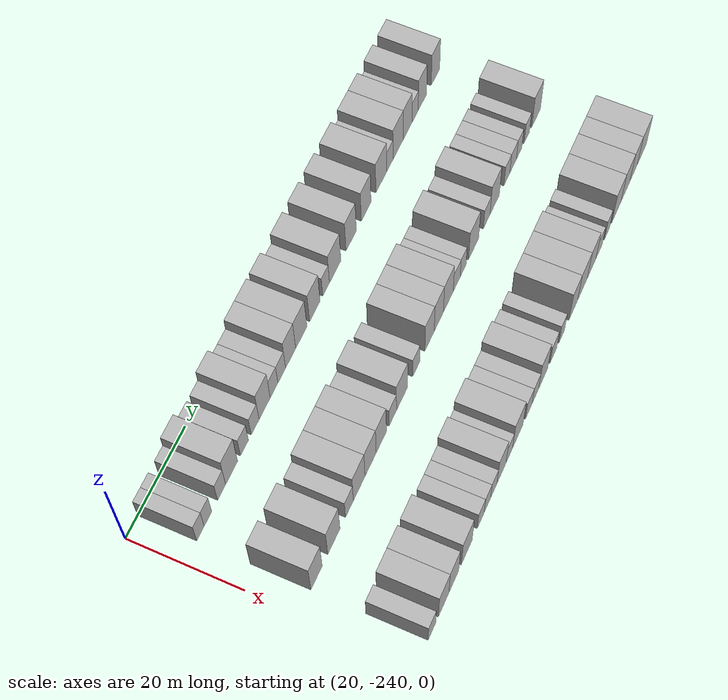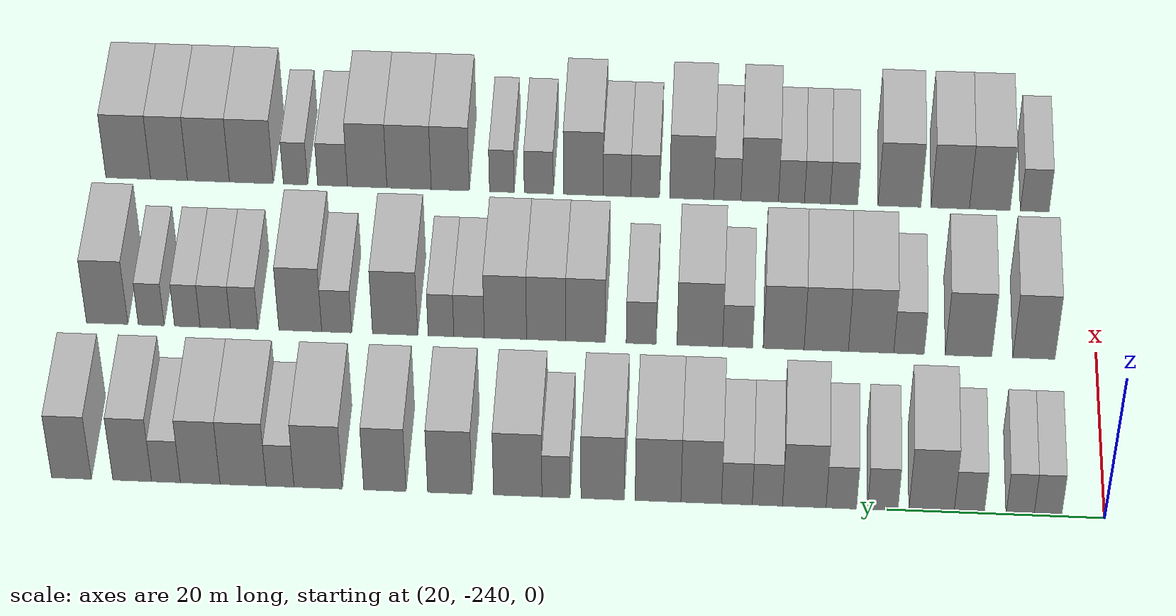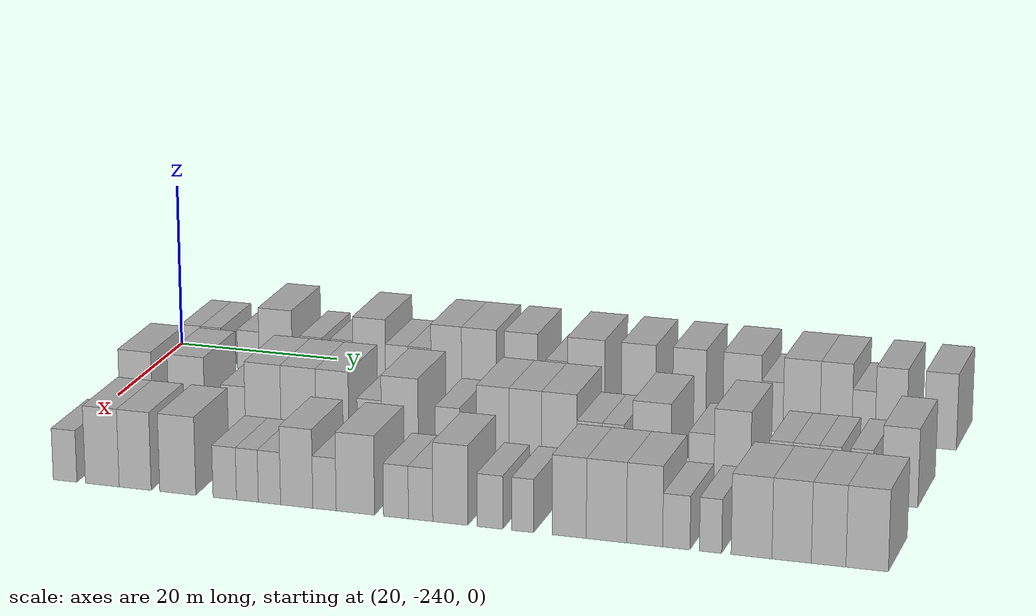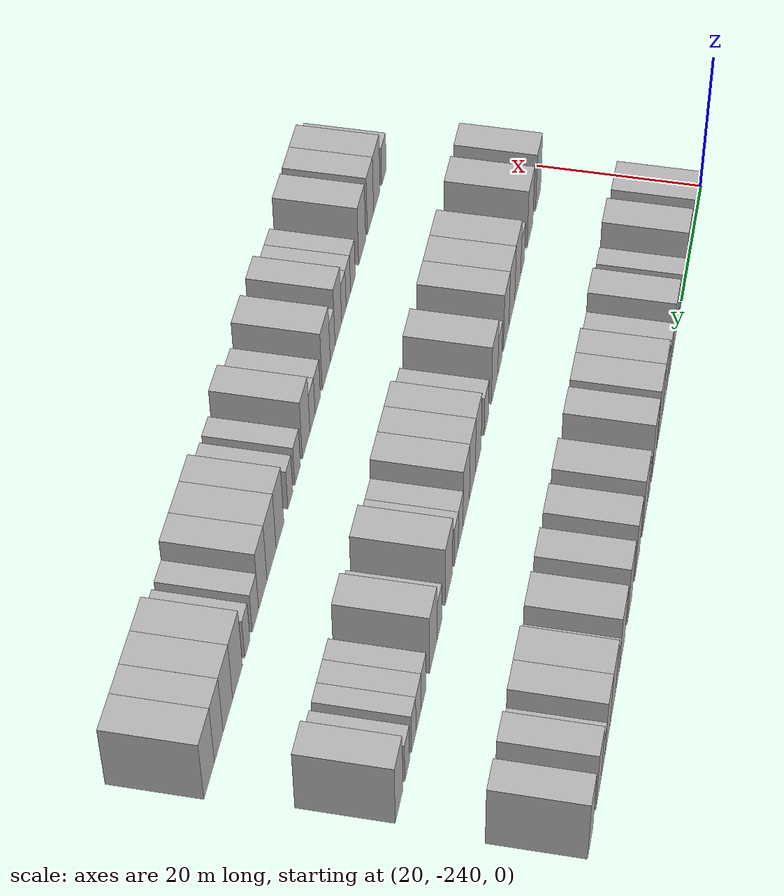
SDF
<sdf version="1.6">
 <world name="default">
  <model name="building_1">
   <static>1</static>
   <pose>25.0000 -234.7384 0 0.000000 0.000000 0.000000</pose>
   <link name="link">
    <pose>0 0 3.00 0 0 0</pose>
    <collision name="collision"><geometry><box><size>10.0000 2.5231 6.0000</size></box></geometry></collision>
    <visual name="visual">
     <cast_shadows>0</cast_shadows>
     <geometry><box><size>10.0000 2.5231 6.0000</size></box></geometry>
     <material>
      <script>
       <uri>model://HANNAS_wall/materials/scripts</uri>
       <uri>model://HANNAS_wall/materials/textures</uri>
       <name>vrc/HANNAS_wall</name>
      </script>
     </material>
    </visual>
   </link>
  </model>
  <model name="building_2">
   <static>1</static>
   <pose>25.0000 -232.1970 0 0.000000 0.000000 0.000000</pose>
   <link name="link">
    <pose>0 0 3.00 0 0 0</pose>
    <collision name="collision"><geometry><box><size>10.0000 2.5597 6.0000</size></box></geometry></collision>
    <visual name="visual">
     <cast_shadows>0</cast_shadows>
     <geometry><box><size>10.0000 2.5597 6.0000</size></box></geometry>
     <material>
      <script>
       <uri>model://HANNAS_wall/materials/scripts</uri>
       <uri>model://HANNAS_wall/materials/textures</uri>
       <name>vrc/HANNAS_wall</name>
      </script>
     </material>
    </visual>
   </link>
  </model>
  <model name="building_3">
   <static>1</static>
   <pose>25.0000 -227.5355 0 0.000000 0.000000 0.000000</pose>
   <link name="link">
    <pose>0 0 3.00 0 0 0</pose>
    <collision name="collision"><geometry><box><size>10.0000 2.7634 6.0000</size></box></geometry></collision>
    <visual name="visual">
     <cast_shadows>0</cast_shadows>
     <geometry><box><size>10.0000 2.7634 6.0000</size></box></geometry>
     <material>
      <script>
       <uri>model://HANNAS_wall/materials/scripts</uri>
       <uri>model://HANNAS_wall/materials/textures</uri>
       <name>vrc/HANNAS_wall</name>
      </script>
     </material>
    </visual>
   </link>
  </model>
  <model name="building_4">
   <static>1</static>
   <pose>25.0000 -224.0733 0 0.000000 0.000000 0.000000</pose>
   <link name="link">
    <pose>0 0 4.50 0 0 0</pose>
    <collision name="collision"><geometry><box><size>10.0000 4.1609 9.0000</size></box></geometry></collision>
    <visual name="visual">
     <cast_shadows>0</cast_shadows>
     <geometry><box><size>10.0000 4.1609 9.0000</size></box></geometry>
     <material>
      <script>
       <uri>model://HANNAS_wall/materials/scripts</uri>
       <uri>model://HANNAS_wall/materials/textures</uri>
       <name>vrc/HANNAS_wall</name>
      </script>
     </material>
    </visual>
   </link>
  </model>
  <model name="building_5">
   <static>1</static>
   <pose>25.0000 -219.5914 0 0.000000 0.000000 0.000000</pose>
   <link name="link">
    <pose>0 0 3.00 0 0 0</pose>
    <collision name="collision"><geometry><box><size>10.0000 2.8029 6.0000</size></box></geometry></collision>
    <visual name="visual">
     <cast_shadows>0</cast_shadows>
     <geometry><box><size>10.0000 2.8029 6.0000</size></box></geometry>
     <material>
      <script>
       <uri>model://HANNAS_wall/materials/scripts</uri>
       <uri>model://HANNAS_wall/materials/textures</uri>
       <name>vrc/HANNAS_wall</name>
      </script>
     </material>
    </visual>
   </link>
  </model>
  <model name="building_6">
   <static>1</static>
   <pose>25.0000 -215.7897 0 0.000000 0.000000 0.000000</pose>
   <link name="link">
    <pose>0 0 3.00 0 0 0</pose>
    <collision name="collision"><geometry><box><size>10.0000 2.8006 6.0000</size></box></geometry></collision>
    <visual name="visual">
     <cast_shadows>0</cast_shadows>
     <geometry><box><size>10.0000 2.8006 6.0000</size></box></geometry>
     <material>
      <script>
       <uri>model://HANNAS_wall/materials/scripts</uri>
       <uri>model://HANNAS_wall/materials/textures</uri>
       <name>vrc/HANNAS_wall</name>
      </script>
     </material>
    </visual>
   </link>
  </model>
  <model name="building_7">
   <static>1</static>
   <pose>25.0000 -212.3828 0 0.000000 0.000000 0.000000</pose>
   <link name="link">
    <pose>0 0 4.50 0 0 0</pose>
    <collision name="collision"><geometry><box><size>10.0000 4.0132 9.0000</size></box></geometry></collision>
    <visual name="visual">
     <cast_shadows>0</cast_shadows>
     <geometry><box><size>10.0000 4.0132 9.0000</size></box></geometry>
     <material>
      <script>
       <uri>model://HANNAS_wall/materials/scripts</uri>
       <uri>model://HANNAS_wall/materials/textures</uri>
       <name>vrc/HANNAS_wall</name>
      </script>
     </material>
    </visual>
   </link>
  </model>
  <model name="building_8">
   <static>1</static>
   <pose>25.0000 -208.9875 0 0.000000 0.000000 0.000000</pose>
   <link name="link">
    <pose>0 0 3.00 0 0 0</pose>
    <collision name="collision"><geometry><box><size>10.0000 2.7774 6.0000</size></box></geometry></collision>
    <visual name="visual">
     <cast_shadows>0</cast_shadows>
     <geometry><box><size>10.0000 2.7774 6.0000</size></box></geometry>
     <material>
      <script>
       <uri>model://HANNAS_wall/materials/scripts</uri>
       <uri>model://HANNAS_wall/materials/textures</uri>
       <name>vrc/HANNAS_wall</name>
      </script>
     </material>
    </visual>
   </link>
  </model>
  <model name="building_9">
   <static>1</static>
   <pose>25.0000 -206.1806 0 0.000000 0.000000 0.000000</pose>
   <link name="link">
    <pose>0 0 3.00 0 0 0</pose>
    <collision name="collision"><geometry><box><size>10.0000 2.8366 6.0000</size></box></geometry></collision>
    <visual name="visual">
     <cast_shadows>0</cast_shadows>
     <geometry><box><size>10.0000 2.8366 6.0000</size></box></geometry>
     <material>
      <script>
       <uri>model://HANNAS_wall/materials/scripts</uri>
       <uri>model://HANNAS_wall/materials/textures</uri>
       <name>vrc/HANNAS_wall</name>
      </script>
     </material>
    </visual>
   </link>
  </model>
  <model name="building_10">
   <static>1</static>
   <pose>25.0000 -202.8915 0 0.000000 0.000000 0.000000</pose>
   <link name="link">
    <pose>0 0 4.50 0 0 0</pose>
    <collision name="collision"><geometry><box><size>10.0000 3.7415 9.0000</size></box></geometry></collision>
    <visual name="visual">
     <cast_shadows>0</cast_shadows>
     <geometry><box><size>10.0000 3.7415 9.0000</size></box></geometry>
     <material>
      <script>
       <uri>model://HANNAS_wall/materials/scripts</uri>
       <uri>model://HANNAS_wall/materials/textures</uri>
       <name>vrc/HANNAS_wall</name>
      </script>
     </material>
    </visual>
   </link>
  </model>
  <model name="building_11">
   <static>1</static>
   <pose>25.0000 -198.9121 0 0.000000 0.000000 0.000000</pose>
   <link name="link">
    <pose>0 0 4.50 0 0 0</pose>
    <collision name="collision"><geometry><box><size>10.0000 4.2174 9.0000</size></box></geometry></collision>
    <visual name="visual">
     <cast_shadows>0</cast_shadows>
     <geometry><box><size>10.0000 4.2174 9.0000</size></box></geometry>
     <material>
      <script>
       <uri>model://HANNAS_wall/materials/scripts</uri>
       <uri>model://HANNAS_wall/materials/textures</uri>
       <name>vrc/HANNAS_wall</name>
      </script>
     </material>
    </visual>
   </link>
  </model>
  <model name="building_12">
   <static>1</static>
   <pose>25.0000 -193.8007 0 0.000000 0.000000 0.000000</pose>
   <link name="link">
    <pose>0 0 4.50 0 0 0</pose>
    <collision name="collision"><geometry><box><size>10.0000 4.0055 9.0000</size></box></geometry></collision>
    <visual name="visual">
     <cast_shadows>0</cast_shadows>
     <geometry><box><size>10.0000 4.0055 9.0000</size></box></geometry>
     <material>
      <script>
       <uri>model://HANNAS_wall/materials/scripts</uri>
       <uri>model://HANNAS_wall/materials/textures</uri>
       <name>vrc/HANNAS_wall</name>
      </script>
     </material>
    </visual>
   </link>
  </model>
  <model name="building_13">
   <static>1</static>
   <pose>25.0000 -189.5023 0 0.000000 0.000000 0.000000</pose>
   <link name="link">
    <pose>0 0 3.00 0 0 0</pose>
    <collision name="collision"><geometry><box><size>10.0000 2.5913 6.0000</size></box></geometry></collision>
    <visual name="visual">
     <cast_shadows>0</cast_shadows>
     <geometry><box><size>10.0000 2.5913 6.0000</size></box></geometry>
     <material>
      <script>
       <uri>model://HANNAS_wall/materials/scripts</uri>
       <uri>model://HANNAS_wall/materials/textures</uri>
       <name>vrc/HANNAS_wall</name>
      </script>
     </material>
    </visual>
   </link>
  </model>
  <model name="building_14">
   <static>1</static>
   <pose>25.0000 -185.9713 0 0.000000 0.000000 0.000000</pose>
   <link name="link">
    <pose>0 0 4.50 0 0 0</pose>
    <collision name="collision"><geometry><box><size>10.0000 4.4707 9.0000</size></box></geometry></collision>
    <visual name="visual">
     <cast_shadows>0</cast_shadows>
     <geometry><box><size>10.0000 4.4707 9.0000</size></box></geometry>
     <material>
      <script>
       <uri>model://HANNAS_wall/materials/scripts</uri>
       <uri>model://HANNAS_wall/materials/textures</uri>
       <name>vrc/HANNAS_wall</name>
      </script>
     </material>
    </visual>
   </link>
  </model>
  <model name="building_15">
   <static>1</static>
   <pose>25.0000 -179.6854 0 0.000000 0.000000 0.000000</pose>
   <link name="link">
    <pose>0 0 4.50 0 0 0</pose>
    <collision name="collision"><geometry><box><size>10.0000 4.1010 9.0000</size></box></geometry></collision>
    <visual name="visual">
     <cast_shadows>0</cast_shadows>
     <geometry><box><size>10.0000 4.1010 9.0000</size></box></geometry>
     <material>
      <script>
       <uri>model://HANNAS_wall/materials/scripts</uri>
       <uri>model://HANNAS_wall/materials/textures</uri>
       <name>vrc/HANNAS_wall</name>
      </script>
     </material>
    </visual>
   </link>
  </model>
  <model name="building_16">
   <static>1</static>
   <pose>25.0000 -173.6761 0 0.000000 0.000000 0.000000</pose>
   <link name="link">
    <pose>0 0 4.50 0 0 0</pose>
    <collision name="collision"><geometry><box><size>10.0000 3.9175 9.0000</size></box></geometry></collision>
    <visual name="visual">
     <cast_shadows>0</cast_shadows>
     <geometry><box><size>10.0000 3.9175 9.0000</size></box></geometry>
     <material>
      <script>
       <uri>model://HANNAS_wall/materials/scripts</uri>
       <uri>model://HANNAS_wall/materials/textures</uri>
       <name>vrc/HANNAS_wall</name>
      </script>
     </material>
    </visual>
   </link>
  </model>
  <model name="building_17">
   <static>1</static>
   <pose>25.0000 -167.4812 0 0.000000 0.000000 0.000000</pose>
   <link name="link">
    <pose>0 0 4.50 0 0 0</pose>
    <collision name="collision"><geometry><box><size>10.0000 4.4723 9.0000</size></box></geometry></collision>
    <visual name="visual">
     <cast_shadows>0</cast_shadows>
     <geometry><box><size>10.0000 4.4723 9.0000</size></box></geometry>
     <material>
      <script>
       <uri>model://HANNAS_wall/materials/scripts</uri>
       <uri>model://HANNAS_wall/materials/textures</uri>
       <name>vrc/HANNAS_wall</name>
      </script>
     </material>
    </visual>
   </link>
  </model>
  <model name="building_18">
   <static>1</static>
   <pose>25.0000 -163.9544 0 0.000000 0.000000 0.000000</pose>
   <link name="link">
    <pose>0 0 3.00 0 0 0</pose>
    <collision name="collision"><geometry><box><size>10.0000 2.5814 6.0000</size></box></geometry></collision>
    <visual name="visual">
     <cast_shadows>0</cast_shadows>
     <geometry><box><size>10.0000 2.5814 6.0000</size></box></geometry>
     <material>
      <script>
       <uri>model://HANNAS_wall/materials/scripts</uri>
       <uri>model://HANNAS_wall/materials/textures</uri>
       <name>vrc/HANNAS_wall</name>
      </script>
     </material>
    </visual>
   </link>
  </model>
  <model name="building_19">
   <static>1</static>
   <pose>25.0000 -160.5230 0 0.000000 0.000000 0.000000</pose>
   <link name="link">
    <pose>0 0 4.50 0 0 0</pose>
    <collision name="collision"><geometry><box><size>10.0000 4.2813 9.0000</size></box></geometry></collision>
    <visual name="visual">
     <cast_shadows>0</cast_shadows>
     <geometry><box><size>10.0000 4.2813 9.0000</size></box></geometry>
     <material>
      <script>
       <uri>model://HANNAS_wall/materials/scripts</uri>
       <uri>model://HANNAS_wall/materials/textures</uri>
       <name>vrc/HANNAS_wall</name>
      </script>
     </material>
    </visual>
   </link>
  </model>
  <model name="building_20">
   <static>1</static>
   <pose>25.0000 -156.5342 0 0.000000 0.000000 0.000000</pose>
   <link name="link">
    <pose>0 0 4.50 0 0 0</pose>
    <collision name="collision"><geometry><box><size>10.0000 3.6963 9.0000</size></box></geometry></collision>
    <visual name="visual">
     <cast_shadows>0</cast_shadows>
     <geometry><box><size>10.0000 3.6963 9.0000</size></box></geometry>
     <material>
      <script>
       <uri>model://HANNAS_wall/materials/scripts</uri>
       <uri>model://HANNAS_wall/materials/textures</uri>
       <name>vrc/HANNAS_wall</name>
      </script>
     </material>
    </visual>
   </link>
  </model>
  <model name="building_21">
   <static>1</static>
   <pose>25.0000 -153.3508 0 0.000000 0.000000 0.000000</pose>
   <link name="link">
    <pose>0 0 3.00 0 0 0</pose>
    <collision name="collision"><geometry><box><size>10.0000 2.6704 6.0000</size></box></geometry></collision>
    <visual name="visual">
     <cast_shadows>0</cast_shadows>
     <geometry><box><size>10.0000 2.6704 6.0000</size></box></geometry>
     <material>
      <script>
       <uri>model://HANNAS_wall/materials/scripts</uri>
       <uri>model://HANNAS_wall/materials/textures</uri>
       <name>vrc/HANNAS_wall</name>
      </script>
     </material>
    </visual>
   </link>
  </model>
  <model name="building_22">
   <static>1</static>
   <pose>25.0000 -150.2124 0 0.000000 0.000000 0.000000</pose>
   <link name="link">
    <pose>0 0 4.50 0 0 0</pose>
    <collision name="collision"><geometry><box><size>10.0000 3.6064 9.0000</size></box></geometry></collision>
    <visual name="visual">
     <cast_shadows>0</cast_shadows>
     <geometry><box><size>10.0000 3.6064 9.0000</size></box></geometry>
     <material>
      <script>
       <uri>model://HANNAS_wall/materials/scripts</uri>
       <uri>model://HANNAS_wall/materials/textures</uri>
       <name>vrc/HANNAS_wall</name>
      </script>
     </material>
    </visual>
   </link>
  </model>
  <model name="building_23">
   <static>1</static>
   <pose>25.0000 -144.5589 0 0.000000 0.000000 0.000000</pose>
   <link name="link">
    <pose>0 0 4.50 0 0 0</pose>
    <collision name="collision"><geometry><box><size>10.0000 3.7007 9.0000</size></box></geometry></collision>
    <visual name="visual">
     <cast_shadows>0</cast_shadows>
     <geometry><box><size>10.0000 3.7007 9.0000</size></box></geometry>
     <material>
      <script>
       <uri>model://HANNAS_wall/materials/scripts</uri>
       <uri>model://HANNAS_wall/materials/textures</uri>
       <name>vrc/HANNAS_wall</name>
      </script>
     </material>
    </visual>
   </link>
  </model>
  <model name="building_120">
   <static>1</static>
   <pose>44.0000 -233.9958 0 0.000000 0.000000 0.000000</pose>
   <link name="link">
    <pose>0 0 4.50 0 0 0</pose>
    <collision name="collision"><geometry><box><size>10.0000 4.0084 9.0000</size></box></geometry></collision>
    <visual name="visual">
     <cast_shadows>0</cast_shadows>
     <geometry><box><size>10.0000 4.0084 9.0000</size></box></geometry>
     <material>
      <script>
       <uri>model://HANNAS_wall/materials/scripts</uri>
       <uri>model://HANNAS_wall/materials/textures</uri>
       <name>vrc/HANNAS_wall</name>
      </script>
     </material>
    </visual>
   </link>
  </model>
  <model name="building_121">
   <static>1</static>
   <pose>44.0000 -227.7845 0 0.000000 0.000000 0.000000</pose>
   <link name="link">
    <pose>0 0 4.50 0 0 0</pose>
    <collision name="collision"><geometry><box><size>10.0000 4.4141 9.0000</size></box></geometry></collision>
    <visual name="visual">
     <cast_shadows>0</cast_shadows>
     <geometry><box><size>10.0000 4.4141 9.0000</size></box></geometry>
     <material>
      <script>
       <uri>model://HANNAS_wall/materials/scripts</uri>
       <uri>model://HANNAS_wall/materials/textures</uri>
       <name>vrc/HANNAS_wall</name>
      </script>
     </material>
    </visual>
   </link>
  </model>
  <model name="building_122">
   <static>1</static>
   <pose>44.0000 -222.1283 0 0.000000 0.000000 0.000000</pose>
   <link name="link">
    <pose>0 0 3.00 0 0 0</pose>
    <collision name="collision"><geometry><box><size>10.0000 2.8984 6.0000</size></box></geometry></collision>
    <visual name="visual">
     <cast_shadows>0</cast_shadows>
     <geometry><box><size>10.0000 2.8984 6.0000</size></box></geometry>
     <material>
      <script>
       <uri>model://HANNAS_wall/materials/scripts</uri>
       <uri>model://HANNAS_wall/materials/textures</uri>
       <name>vrc/HANNAS_wall</name>
      </script>
     </material>
    </visual>
   </link>
  </model>
  <model name="building_123">
   <static>1</static>
   <pose>44.0000 -218.5198 0 0.000000 0.000000 0.000000</pose>
   <link name="link">
    <pose>0 0 4.50 0 0 0</pose>
    <collision name="collision"><geometry><box><size>10.0000 4.3186 9.0000</size></box></geometry></collision>
    <visual name="visual">
     <cast_shadows>0</cast_shadows>
     <geometry><box><size>10.0000 4.3186 9.0000</size></box></geometry>
     <material>
      <script>
       <uri>model://HANNAS_wall/materials/scripts</uri>
       <uri>model://HANNAS_wall/materials/textures</uri>
       <name>vrc/HANNAS_wall</name>
      </script>
     </material>
    </visual>
   </link>
  </model>
  <model name="building_124">
   <static>1</static>
   <pose>44.0000 -214.2563 0 0.000000 0.000000 0.000000</pose>
   <link name="link">
    <pose>0 0 4.50 0 0 0</pose>
    <collision name="collision"><geometry><box><size>10.0000 4.2084 9.0000</size></box></geometry></collision>
    <visual name="visual">
     <cast_shadows>0</cast_shadows>
     <geometry><box><size>10.0000 4.2084 9.0000</size></box></geometry>
     <material>
      <script>
       <uri>model://HANNAS_wall/materials/scripts</uri>
       <uri>model://HANNAS_wall/materials/textures</uri>
       <name>vrc/HANNAS_wall</name>
      </script>
     </material>
    </visual>
   </link>
  </model>
  <model name="building_125">
   <static>1</static>
   <pose>44.0000 -210.2001 0 0.000000 0.000000 0.000000</pose>
   <link name="link">
    <pose>0 0 4.50 0 0 0</pose>
    <collision name="collision"><geometry><box><size>10.0000 3.9039 9.0000</size></box></geometry></collision>
    <visual name="visual">
     <cast_shadows>0</cast_shadows>
     <geometry><box><size>10.0000 3.9039 9.0000</size></box></geometry>
     <material>
      <script>
       <uri>model://HANNAS_wall/materials/scripts</uri>
       <uri>model://HANNAS_wall/materials/textures</uri>
       <name>vrc/HANNAS_wall</name>
      </script>
     </material>
    </visual>
   </link>
  </model>
  <model name="building_126">
   <static>1</static>
   <pose>44.0000 -205.8171 0 0.000000 0.000000 0.000000</pose>
   <link name="link">
    <pose>0 0 3.00 0 0 0</pose>
    <collision name="collision"><geometry><box><size>10.0000 2.8621 6.0000</size></box></geometry></collision>
    <visual name="visual">
     <cast_shadows>0</cast_shadows>
     <geometry><box><size>10.0000 2.8621 6.0000</size></box></geometry>
     <material>
      <script>
       <uri>model://HANNAS_wall/materials/scripts</uri>
       <uri>model://HANNAS_wall/materials/textures</uri>
       <name>vrc/HANNAS_wall</name>
      </script>
     </material>
    </visual>
   </link>
  </model>
  <model name="building_127">
   <static>1</static>
   <pose>44.0000 -202.2098 0 0.000000 0.000000 0.000000</pose>
   <link name="link">
    <pose>0 0 4.50 0 0 0</pose>
    <collision name="collision"><geometry><box><size>10.0000 4.3526 9.0000</size></box></geometry></collision>
    <visual name="visual">
     <cast_shadows>0</cast_shadows>
     <geometry><box><size>10.0000 4.3526 9.0000</size></box></geometry>
     <material>
      <script>
       <uri>model://HANNAS_wall/materials/scripts</uri>
       <uri>model://HANNAS_wall/materials/textures</uri>
       <name>vrc/HANNAS_wall</name>
      </script>
     </material>
    </visual>
   </link>
  </model>
  <model name="building_128">
   <static>1</static>
   <pose>44.0000 -196.6104 0 0.000000 0.000000 0.000000</pose>
   <link name="link">
    <pose>0 0 3.00 0 0 0</pose>
    <collision name="collision"><geometry><box><size>10.0000 2.8463 6.0000</size></box></geometry></collision>
    <visual name="visual">
     <cast_shadows>0</cast_shadows>
     <geometry><box><size>10.0000 2.8463 6.0000</size></box></geometry>
     <material>
      <script>
       <uri>model://HANNAS_wall/materials/scripts</uri>
       <uri>model://HANNAS_wall/materials/textures</uri>
       <name>vrc/HANNAS_wall</name>
      </script>
     </material>
    </visual>
   </link>
  </model>
  <model name="building_129">
   <static>1</static>
   <pose>44.0000 -191.3060 0 0.000000 0.000000 0.000000</pose>
   <link name="link">
    <pose>0 0 4.50 0 0 0</pose>
    <collision name="collision"><geometry><box><size>10.0000 3.7624 9.0000</size></box></geometry></collision>
    <visual name="visual">
     <cast_shadows>0</cast_shadows>
     <geometry><box><size>10.0000 3.7624 9.0000</size></box></geometry>
     <material>
      <script>
       <uri>model://HANNAS_wall/materials/scripts</uri>
       <uri>model://HANNAS_wall/materials/textures</uri>
       <name>vrc/HANNAS_wall</name>
      </script>
     </material>
    </visual>
   </link>
  </model>
  <model name="building_130">
   <static>1</static>
   <pose>44.0000 -187.5455 0 0.000000 0.000000 0.000000</pose>
   <link name="link">
    <pose>0 0 4.50 0 0 0</pose>
    <collision name="collision"><geometry><box><size>10.0000 3.7586 9.0000</size></box></geometry></collision>
    <visual name="visual">
     <cast_shadows>0</cast_shadows>
     <geometry><box><size>10.0000 3.7586 9.0000</size></box></geometry>
     <material>
      <script>
       <uri>model://HANNAS_wall/materials/scripts</uri>
       <uri>model://HANNAS_wall/materials/textures</uri>
       <name>vrc/HANNAS_wall</name>
      </script>
     </material>
    </visual>
   </link>
  </model>
  <model name="building_131">
   <static>1</static>
   <pose>44.0000 -183.6457 0 0.000000 0.000000 0.000000</pose>
   <link name="link">
    <pose>0 0 4.50 0 0 0</pose>
    <collision name="collision"><geometry><box><size>10.0000 4.0411 9.0000</size></box></geometry></collision>
    <visual name="visual">
     <cast_shadows>0</cast_shadows>
     <geometry><box><size>10.0000 4.0411 9.0000</size></box></geometry>
     <material>
      <script>
       <uri>model://HANNAS_wall/materials/scripts</uri>
       <uri>model://HANNAS_wall/materials/textures</uri>
       <name>vrc/HANNAS_wall</name>
      </script>
     </material>
    </visual>
   </link>
  </model>
  <model name="building_132">
   <static>1</static>
   <pose>44.0000 -180.1648 0 0.000000 0.000000 0.000000</pose>
   <link name="link">
    <pose>0 0 3.00 0 0 0</pose>
    <collision name="collision"><geometry><box><size>10.0000 2.9207 6.0000</size></box></geometry></collision>
    <visual name="visual">
     <cast_shadows>0</cast_shadows>
     <geometry><box><size>10.0000 2.9207 6.0000</size></box></geometry>
     <material>
      <script>
       <uri>model://HANNAS_wall/materials/scripts</uri>
       <uri>model://HANNAS_wall/materials/textures</uri>
       <name>vrc/HANNAS_wall</name>
      </script>
     </material>
    </visual>
   </link>
  </model>
  <model name="building_133">
   <static>1</static>
   <pose>44.0000 -177.4719 0 0.000000 0.000000 0.000000</pose>
   <link name="link">
    <pose>0 0 3.00 0 0 0</pose>
    <collision name="collision"><geometry><box><size>10.0000 2.4650 6.0000</size></box></geometry></collision>
    <visual name="visual">
     <cast_shadows>0</cast_shadows>
     <geometry><box><size>10.0000 2.4650 6.0000</size></box></geometry>
     <material>
      <script>
       <uri>model://HANNAS_wall/materials/scripts</uri>
       <uri>model://HANNAS_wall/materials/textures</uri>
       <name>vrc/HANNAS_wall</name>
      </script>
     </material>
    </visual>
   </link>
  </model>
  <model name="building_134">
   <static>1</static>
   <pose>44.0000 -173.0725 0 0.000000 0.000000 0.000000</pose>
   <link name="link">
    <pose>0 0 4.50 0 0 0</pose>
    <collision name="collision"><geometry><box><size>10.0000 4.3337 9.0000</size></box></geometry></collision>
    <visual name="visual">
     <cast_shadows>0</cast_shadows>
     <geometry><box><size>10.0000 4.3337 9.0000</size></box></geometry>
     <material>
      <script>
       <uri>model://HANNAS_wall/materials/scripts</uri>
       <uri>model://HANNAS_wall/materials/textures</uri>
       <name>vrc/HANNAS_wall</name>
      </script>
     </material>
    </visual>
   </link>
  </model>
  <model name="building_135">
   <static>1</static>
   <pose>44.0000 -167.4686 0 0.000000 0.000000 0.000000</pose>
   <link name="link">
    <pose>0 0 3.00 0 0 0</pose>
    <collision name="collision"><geometry><box><size>10.0000 2.8742 6.0000</size></box></geometry></collision>
    <visual name="visual">
     <cast_shadows>0</cast_shadows>
     <geometry><box><size>10.0000 2.8742 6.0000</size></box></geometry>
     <material>
      <script>
       <uri>model://HANNAS_wall/materials/scripts</uri>
       <uri>model://HANNAS_wall/materials/textures</uri>
       <name>vrc/HANNAS_wall</name>
      </script>
     </material>
    </visual>
   </link>
  </model>
  <model name="building_136">
   <static>1</static>
   <pose>44.0000 -163.9742 0 0.000000 0.000000 0.000000</pose>
   <link name="link">
    <pose>0 0 4.50 0 0 0</pose>
    <collision name="collision"><geometry><box><size>10.0000 4.1145 9.0000</size></box></geometry></collision>
    <visual name="visual">
     <cast_shadows>0</cast_shadows>
     <geometry><box><size>10.0000 4.1145 9.0000</size></box></geometry>
     <material>
      <script>
       <uri>model://HANNAS_wall/materials/scripts</uri>
       <uri>model://HANNAS_wall/materials/textures</uri>
       <name>vrc/HANNAS_wall</name>
      </script>
     </material>
    </visual>
   </link>
  </model>
  <model name="building_137">
   <static>1</static>
   <pose>44.0000 -158.5891 0 0.000000 0.000000 0.000000</pose>
   <link name="link">
    <pose>0 0 3.00 0 0 0</pose>
    <collision name="collision"><geometry><box><size>10.0000 2.6557 6.0000</size></box></geometry></collision>
    <visual name="visual">
     <cast_shadows>0</cast_shadows>
     <geometry><box><size>10.0000 2.6557 6.0000</size></box></geometry>
     <material>
      <script>
       <uri>model://HANNAS_wall/materials/scripts</uri>
       <uri>model://HANNAS_wall/materials/textures</uri>
       <name>vrc/HANNAS_wall</name>
      </script>
     </material>
    </visual>
   </link>
  </model>
  <model name="building_138">
   <static>1</static>
   <pose>44.0000 -155.7991 0 0.000000 0.000000 0.000000</pose>
   <link name="link">
    <pose>0 0 3.00 0 0 0</pose>
    <collision name="collision"><geometry><box><size>10.0000 2.9244 6.0000</size></box></geometry></collision>
    <visual name="visual">
     <cast_shadows>0</cast_shadows>
     <geometry><box><size>10.0000 2.9244 6.0000</size></box></geometry>
     <material>
      <script>
       <uri>model://HANNAS_wall/materials/scripts</uri>
       <uri>model://HANNAS_wall/materials/textures</uri>
       <name>vrc/HANNAS_wall</name>
      </script>
     </material>
    </visual>
   </link>
  </model>
  <model name="building_139">
   <static>1</static>
   <pose>44.0000 -153.1100 0 0.000000 0.000000 0.000000</pose>
   <link name="link">
    <pose>0 0 3.00 0 0 0</pose>
    <collision name="collision"><geometry><box><size>10.0000 2.4538 6.0000</size></box></geometry></collision>
    <visual name="visual">
     <cast_shadows>0</cast_shadows>
     <geometry><box><size>10.0000 2.4538 6.0000</size></box></geometry>
     <material>
      <script>
       <uri>model://HANNAS_wall/materials/scripts</uri>
       <uri>model://HANNAS_wall/materials/textures</uri>
       <name>vrc/HANNAS_wall</name>
      </script>
     </material>
    </visual>
   </link>
  </model>
  <model name="building_140">
   <static>1</static>
   <pose>44.0000 -149.6361 0 0.000000 0.000000 0.000000</pose>
   <link name="link">
    <pose>0 0 3.00 0 0 0</pose>
    <collision name="collision"><geometry><box><size>10.0000 2.4939 6.0000</size></box></geometry></collision>
    <visual name="visual">
     <cast_shadows>0</cast_shadows>
     <geometry><box><size>10.0000 2.4939 6.0000</size></box></geometry>
     <material>
      <script>
       <uri>model://HANNAS_wall/materials/scripts</uri>
       <uri>model://HANNAS_wall/materials/textures</uri>
       <name>vrc/HANNAS_wall</name>
      </script>
     </material>
    </visual>
   </link>
  </model>
  <model name="building_141">
   <static>1</static>
   <pose>44.0000 -145.3982 0 0.000000 0.000000 0.000000</pose>
   <link name="link">
    <pose>0 0 4.50 0 0 0</pose>
    <collision name="collision"><geometry><box><size>10.0000 3.9820 9.0000</size></box></geometry></collision>
    <visual name="visual">
     <cast_shadows>0</cast_shadows>
     <geometry><box><size>10.0000 3.9820 9.0000</size></box></geometry>
     <material>
      <script>
       <uri>model://HANNAS_wall/materials/scripts</uri>
       <uri>model://HANNAS_wall/materials/textures</uri>
       <name>vrc/HANNAS_wall</name>
      </script>
     </material>
    </visual>
   </link>
  </model>
  <model name="building_230">
   <static>1</static>
   <pose>63.0000 -234.5923 0 0.000000 0.000000 0.000000</pose>
   <link name="link">
    <pose>0 0 3.00 0 0 0</pose>
    <collision name="collision"><geometry><box><size>10.0000 2.8155 6.0000</size></box></geometry></collision>
    <visual name="visual">
     <cast_shadows>0</cast_shadows>
     <geometry><box><size>10.0000 2.8155 6.0000</size></box></geometry>
     <material>
      <script>
       <uri>model://HANNAS_wall/materials/scripts</uri>
       <uri>model://HANNAS_wall/materials/textures</uri>
       <name>vrc/HANNAS_wall</name>
      </script>
     </material>
    </visual>
   </link>
  </model>
  <model name="building_231">
   <static>1</static>
   <pose>63.0000 -230.1860 0 0.000000 0.000000 0.000000</pose>
   <link name="link">
    <pose>0 0 4.50 0 0 0</pose>
    <collision name="collision"><geometry><box><size>10.0000 3.9971 9.0000</size></box></geometry></collision>
    <visual name="visual">
     <cast_shadows>0</cast_shadows>
     <geometry><box><size>10.0000 3.9971 9.0000</size></box></geometry>
     <material>
      <script>
       <uri>model://HANNAS_wall/materials/scripts</uri>
       <uri>model://HANNAS_wall/materials/textures</uri>
       <name>vrc/HANNAS_wall</name>
      </script>
     </material>
    </visual>
   </link>
  </model>
  <model name="building_232">
   <static>1</static>
   <pose>63.0000 -226.3024 0 0.000000 0.000000 0.000000</pose>
   <link name="link">
    <pose>0 0 4.50 0 0 0</pose>
    <collision name="collision"><geometry><box><size>10.0000 3.7701 9.0000</size></box></geometry></collision>
    <visual name="visual">
     <cast_shadows>0</cast_shadows>
     <geometry><box><size>10.0000 3.7701 9.0000</size></box></geometry>
     <material>
      <script>
       <uri>model://HANNAS_wall/materials/scripts</uri>
       <uri>model://HANNAS_wall/materials/textures</uri>
       <name>vrc/HANNAS_wall</name>
      </script>
     </material>
    </visual>
   </link>
  </model>
  <model name="building_233">
   <static>1</static>
   <pose>63.0000 -221.3089 0 0.000000 0.000000 0.000000</pose>
   <link name="link">
    <pose>0 0 4.50 0 0 0</pose>
    <collision name="collision"><geometry><box><size>10.0000 4.2169 9.0000</size></box></geometry></collision>
    <visual name="visual">
     <cast_shadows>0</cast_shadows>
     <geometry><box><size>10.0000 4.2169 9.0000</size></box></geometry>
     <material>
      <script>
       <uri>model://HANNAS_wall/materials/scripts</uri>
       <uri>model://HANNAS_wall/materials/textures</uri>
       <name>vrc/HANNAS_wall</name>
      </script>
     </material>
    </visual>
   </link>
  </model>
  <model name="building_234">
   <static>1</static>
   <pose>63.0000 -215.8413 0 0.000000 0.000000 0.000000</pose>
   <link name="link">
    <pose>0 0 3.00 0 0 0</pose>
    <collision name="collision"><geometry><box><size>10.0000 2.7183 6.0000</size></box></geometry></collision>
    <visual name="visual">
     <cast_shadows>0</cast_shadows>
     <geometry><box><size>10.0000 2.7183 6.0000</size></box></geometry>
     <material>
      <script>
       <uri>model://HANNAS_wall/materials/scripts</uri>
       <uri>model://HANNAS_wall/materials/textures</uri>
       <name>vrc/HANNAS_wall</name>
      </script>
     </material>
    </visual>
   </link>
  </model>
  <model name="building_235">
   <static>1</static>
   <pose>63.0000 -213.2215 0 0.000000 0.000000 0.000000</pose>
   <link name="link">
    <pose>0 0 3.00 0 0 0</pose>
    <collision name="collision"><geometry><box><size>10.0000 2.5212 6.0000</size></box></geometry></collision>
    <visual name="visual">
     <cast_shadows>0</cast_shadows>
     <geometry><box><size>10.0000 2.5212 6.0000</size></box></geometry>
     <material>
      <script>
       <uri>model://HANNAS_wall/materials/scripts</uri>
       <uri>model://HANNAS_wall/materials/textures</uri>
       <name>vrc/HANNAS_wall</name>
      </script>
     </material>
    </visual>
   </link>
  </model>
  <model name="building_236">
   <static>1</static>
   <pose>63.0000 -210.6801 0 0.000000 0.000000 0.000000</pose>
   <link name="link">
    <pose>0 0 3.00 0 0 0</pose>
    <collision name="collision"><geometry><box><size>10.0000 2.5617 6.0000</size></box></geometry></collision>
    <visual name="visual">
     <cast_shadows>0</cast_shadows>
     <geometry><box><size>10.0000 2.5617 6.0000</size></box></geometry>
     <material>
      <script>
       <uri>model://HANNAS_wall/materials/scripts</uri>
       <uri>model://HANNAS_wall/materials/textures</uri>
       <name>vrc/HANNAS_wall</name>
      </script>
     </material>
    </visual>
   </link>
  </model>
  <model name="building_237">
   <static>1</static>
   <pose>63.0000 -207.5498 0 0.000000 0.000000 0.000000</pose>
   <link name="link">
    <pose>0 0 4.50 0 0 0</pose>
    <collision name="collision"><geometry><box><size>10.0000 3.6989 9.0000</size></box></geometry></collision>
    <visual name="visual">
     <cast_shadows>0</cast_shadows>
     <geometry><box><size>10.0000 3.6989 9.0000</size></box></geometry>
     <material>
      <script>
       <uri>model://HANNAS_wall/materials/scripts</uri>
       <uri>model://HANNAS_wall/materials/textures</uri>
       <name>vrc/HANNAS_wall</name>
      </script>
     </material>
    </visual>
   </link>
  </model>
  <model name="building_238">
   <static>1</static>
   <pose>63.0000 -204.3689 0 0.000000 0.000000 0.000000</pose>
   <link name="link">
    <pose>0 0 3.00 0 0 0</pose>
    <collision name="collision"><geometry><box><size>10.0000 2.6629 6.0000</size></box></geometry></collision>
    <visual name="visual">
     <cast_shadows>0</cast_shadows>
     <geometry><box><size>10.0000 2.6629 6.0000</size></box></geometry>
     <material>
      <script>
       <uri>model://HANNAS_wall/materials/scripts</uri>
       <uri>model://HANNAS_wall/materials/textures</uri>
       <name>vrc/HANNAS_wall</name>
      </script>
     </material>
    </visual>
   </link>
  </model>
  <model name="building_239">
   <static>1</static>
   <pose>63.0000 -200.8560 0 0.000000 0.000000 0.000000</pose>
   <link name="link">
    <pose>0 0 4.50 0 0 0</pose>
    <collision name="collision"><geometry><box><size>10.0000 4.3628 9.0000</size></box></geometry></collision>
    <visual name="visual">
     <cast_shadows>0</cast_shadows>
     <geometry><box><size>10.0000 4.3628 9.0000</size></box></geometry>
     <material>
      <script>
       <uri>model://HANNAS_wall/materials/scripts</uri>
       <uri>model://HANNAS_wall/materials/textures</uri>
       <name>vrc/HANNAS_wall</name>
      </script>
     </material>
    </visual>
   </link>
  </model>
  <model name="building_240">
   <static>1</static>
   <pose>63.0000 -196.2683 0 0.000000 0.000000 0.000000</pose>
   <link name="link">
    <pose>0 0 3.00 0 0 0</pose>
    <collision name="collision"><geometry><box><size>10.0000 2.8126 6.0000</size></box></geometry></collision>
    <visual name="visual">
     <cast_shadows>0</cast_shadows>
     <geometry><box><size>10.0000 2.8126 6.0000</size></box></geometry>
     <material>
      <script>
       <uri>model://HANNAS_wall/materials/scripts</uri>
       <uri>model://HANNAS_wall/materials/textures</uri>
       <name>vrc/HANNAS_wall</name>
      </script>
     </material>
    </visual>
   </link>
  </model>
  <model name="building_241">
   <static>1</static>
   <pose>63.0000 -193.4927 0 0.000000 0.000000 0.000000</pose>
   <link name="link">
    <pose>0 0 3.00 0 0 0</pose>
    <collision name="collision"><geometry><box><size>10.0000 2.7386 6.0000</size></box></geometry></collision>
    <visual name="visual">
     <cast_shadows>0</cast_shadows>
     <geometry><box><size>10.0000 2.7386 6.0000</size></box></geometry>
     <material>
      <script>
       <uri>model://HANNAS_wall/materials/scripts</uri>
       <uri>model://HANNAS_wall/materials/textures</uri>
       <name>vrc/HANNAS_wall</name>
      </script>
     </material>
    </visual>
   </link>
  </model>
  <model name="building_242">
   <static>1</static>
   <pose>63.0000 -190.1564 0 0.000000 0.000000 0.000000</pose>
   <link name="link">
    <pose>0 0 4.50 0 0 0</pose>
    <collision name="collision"><geometry><box><size>10.0000 3.9339 9.0000</size></box></geometry></collision>
    <visual name="visual">
     <cast_shadows>0</cast_shadows>
     <geometry><box><size>10.0000 3.9339 9.0000</size></box></geometry>
     <material>
      <script>
       <uri>model://HANNAS_wall/materials/scripts</uri>
       <uri>model://HANNAS_wall/materials/textures</uri>
       <name>vrc/HANNAS_wall</name>
      </script>
     </material>
    </visual>
   </link>
  </model>
  <model name="building_243">
   <static>1</static>
   <pose>63.0000 -185.7538 0 0.000000 0.000000 0.000000</pose>
   <link name="link">
    <pose>0 0 3.00 0 0 0</pose>
    <collision name="collision"><geometry><box><size>10.0000 2.8715 6.0000</size></box></geometry></collision>
    <visual name="visual">
     <cast_shadows>0</cast_shadows>
     <geometry><box><size>10.0000 2.8715 6.0000</size></box></geometry>
     <material>
      <script>
       <uri>model://HANNAS_wall/materials/scripts</uri>
       <uri>model://HANNAS_wall/materials/textures</uri>
       <name>vrc/HANNAS_wall</name>
      </script>
     </material>
    </visual>
   </link>
  </model>
  <model name="building_244">
   <static>1</static>
   <pose>63.0000 -182.0987 0 0.000000 0.000000 0.000000</pose>
   <link name="link">
    <pose>0 0 3.00 0 0 0</pose>
    <collision name="collision"><geometry><box><size>10.0000 2.4386 6.0000</size></box></geometry></collision>
    <visual name="visual">
     <cast_shadows>0</cast_shadows>
     <geometry><box><size>10.0000 2.4386 6.0000</size></box></geometry>
     <material>
      <script>
       <uri>model://HANNAS_wall/materials/scripts</uri>
       <uri>model://HANNAS_wall/materials/textures</uri>
       <name>vrc/HANNAS_wall</name>
      </script>
     </material>
    </visual>
   </link>
  </model>
  <model name="building_245">
   <static>1</static>
   <pose>63.0000 -176.9919 0 0.000000 0.000000 0.000000</pose>
   <link name="link">
    <pose>0 0 4.50 0 0 0</pose>
    <collision name="collision"><geometry><box><size>10.0000 3.7751 9.0000</size></box></geometry></collision>
    <visual name="visual">
     <cast_shadows>0</cast_shadows>
     <geometry><box><size>10.0000 3.7751 9.0000</size></box></geometry>
     <material>
      <script>
       <uri>model://HANNAS_wall/materials/scripts</uri>
       <uri>model://HANNAS_wall/materials/textures</uri>
       <name>vrc/HANNAS_wall</name>
      </script>
     </material>
    </visual>
   </link>
  </model>
  <model name="building_246">
   <static>1</static>
   <pose>63.0000 -172.9090 0 0.000000 0.000000 0.000000</pose>
   <link name="link">
    <pose>0 0 4.50 0 0 0</pose>
    <collision name="collision"><geometry><box><size>10.0000 4.3906 9.0000</size></box></geometry></collision>
    <visual name="visual">
     <cast_shadows>0</cast_shadows>
     <geometry><box><size>10.0000 4.3906 9.0000</size></box></geometry>
     <material>
      <script>
       <uri>model://HANNAS_wall/materials/scripts</uri>
       <uri>model://HANNAS_wall/materials/textures</uri>
       <name>vrc/HANNAS_wall</name>
      </script>
     </material>
    </visual>
   </link>
  </model>
  <model name="building_247">
   <static>1</static>
   <pose>63.0000 -168.7563 0 0.000000 0.000000 0.000000</pose>
   <link name="link">
    <pose>0 0 4.50 0 0 0</pose>
    <collision name="collision"><geometry><box><size>10.0000 3.9148 9.0000</size></box></geometry></collision>
    <visual name="visual">
     <cast_shadows>0</cast_shadows>
     <geometry><box><size>10.0000 3.9148 9.0000</size></box></geometry>
     <material>
      <script>
       <uri>model://HANNAS_wall/materials/scripts</uri>
       <uri>model://HANNAS_wall/materials/textures</uri>
       <name>vrc/HANNAS_wall</name>
      </script>
     </material>
    </visual>
   </link>
  </model>
  <model name="building_248">
   <static>1</static>
   <pose>63.0000 -165.3194 0 0.000000 0.000000 0.000000</pose>
   <link name="link">
    <pose>0 0 3.00 0 0 0</pose>
    <collision name="collision"><geometry><box><size>10.0000 2.9591 6.0000</size></box></geometry></collision>
    <visual name="visual">
     <cast_shadows>0</cast_shadows>
     <geometry><box><size>10.0000 2.9591 6.0000</size></box></geometry>
     <material>
      <script>
       <uri>model://HANNAS_wall/materials/scripts</uri>
       <uri>model://HANNAS_wall/materials/textures</uri>
       <name>vrc/HANNAS_wall</name>
      </script>
     </material>
    </visual>
   </link>
  </model>
  <model name="building_249">
   <static>1</static>
   <pose>63.0000 -161.6381 0 0.000000 0.000000 0.000000</pose>
   <link name="link">
    <pose>0 0 3.00 0 0 0</pose>
    <collision name="collision"><geometry><box><size>10.0000 2.4035 6.0000</size></box></geometry></collision>
    <visual name="visual">
     <cast_shadows>0</cast_shadows>
     <geometry><box><size>10.0000 2.4035 6.0000</size></box></geometry>
     <material>
      <script>
       <uri>model://HANNAS_wall/materials/scripts</uri>
       <uri>model://HANNAS_wall/materials/textures</uri>
       <name>vrc/HANNAS_wall</name>
      </script>
     </material>
    </visual>
   </link>
  </model>
  <model name="building_250">
   <static>1</static>
   <pose>63.0000 -157.2535 0 0.000000 0.000000 0.000000</pose>
   <link name="link">
    <pose>0 0 4.50 0 0 0</pose>
    <collision name="collision"><geometry><box><size>10.0000 4.3659 9.0000</size></box></geometry></collision>
    <visual name="visual">
     <cast_shadows>0</cast_shadows>
     <geometry><box><size>10.0000 4.3659 9.0000</size></box></geometry>
     <material>
      <script>
       <uri>model://HANNAS_wall/materials/scripts</uri>
       <uri>model://HANNAS_wall/materials/textures</uri>
       <name>vrc/HANNAS_wall</name>
      </script>
     </material>
    </visual>
   </link>
  </model>
  <model name="building_251">
   <static>1</static>
   <pose>63.0000 -152.9822 0 0.000000 0.000000 0.000000</pose>
   <link name="link">
    <pose>0 0 4.50 0 0 0</pose>
    <collision name="collision"><geometry><box><size>10.0000 4.1767 9.0000</size></box></geometry></collision>
    <visual name="visual">
     <cast_shadows>0</cast_shadows>
     <geometry><box><size>10.0000 4.1767 9.0000</size></box></geometry>
     <material>
      <script>
       <uri>model://HANNAS_wall/materials/scripts</uri>
       <uri>model://HANNAS_wall/materials/textures</uri>
       <name>vrc/HANNAS_wall</name>
      </script>
     </material>
    </visual>
   </link>
  </model>
  <model name="building_252">
   <static>1</static>
   <pose>63.0000 -149.0633 0 0.000000 0.000000 0.000000</pose>
   <link name="link">
    <pose>0 0 4.50 0 0 0</pose>
    <collision name="collision"><geometry><box><size>10.0000 3.6610 9.0000</size></box></geometry></collision>
    <visual name="visual">
     <cast_shadows>0</cast_shadows>
     <geometry><box><size>10.0000 3.6610 9.0000</size></box></geometry>
     <material>
      <script>
       <uri>model://HANNAS_wall/materials/scripts</uri>
       <uri>model://HANNAS_wall/materials/textures</uri>
       <name>vrc/HANNAS_wall</name>
      </script>
     </material>
    </visual>
   </link>
  </model>
  <model name="building_253">
   <static>1</static>
   <pose>63.0000 -145.0054 0 0.000000 0.000000 0.000000</pose>
   <link name="link">
    <pose>0 0 4.50 0 0 0</pose>
    <collision name="collision"><geometry><box><size>10.0000 4.4548 9.0000</size></box></geometry></collision>
    <visual name="visual">
     <cast_shadows>0</cast_shadows>
     <geometry><box><size>10.0000 4.4548 9.0000</size></box></geometry>
     <material>
      <script>
       <uri>model://HANNAS_wall/materials/scripts</uri>
       <uri>model://HANNAS_wall/materials/textures</uri>
       <name>vrc/HANNAS_wall</name>
      </script>
     </material>
    </visual>
   </link>
  </model>
 </world>
</sdf>
